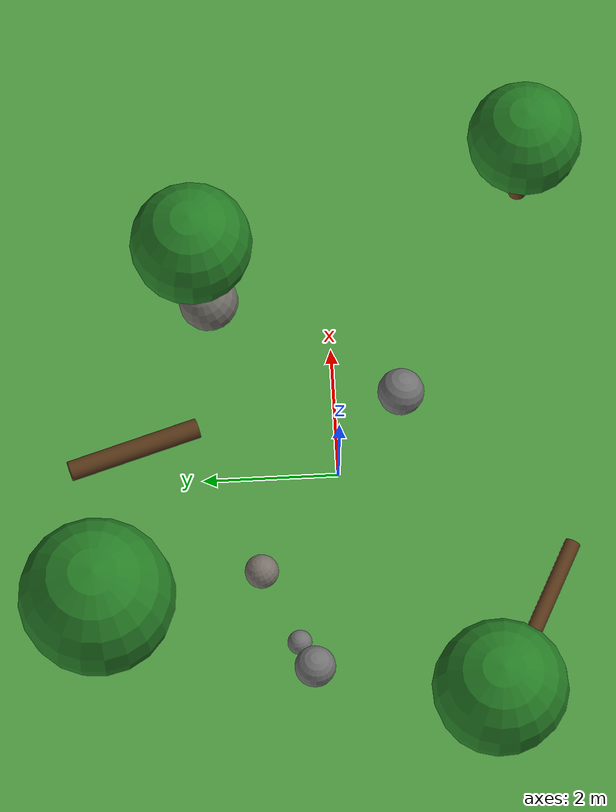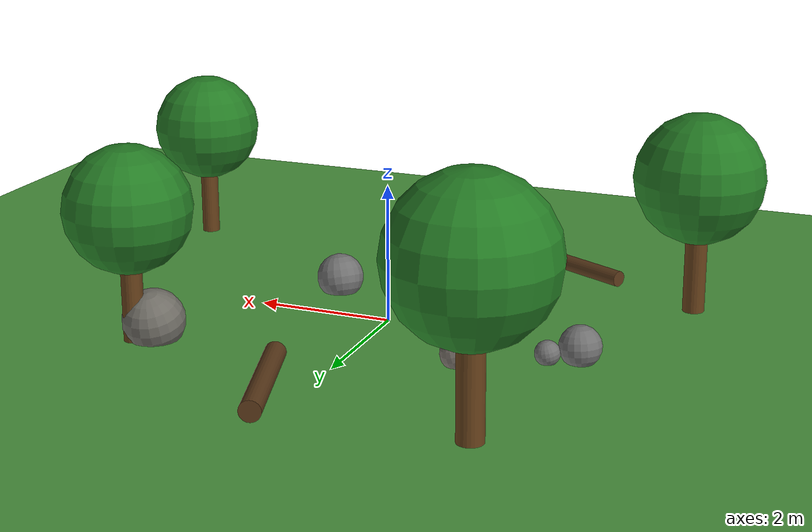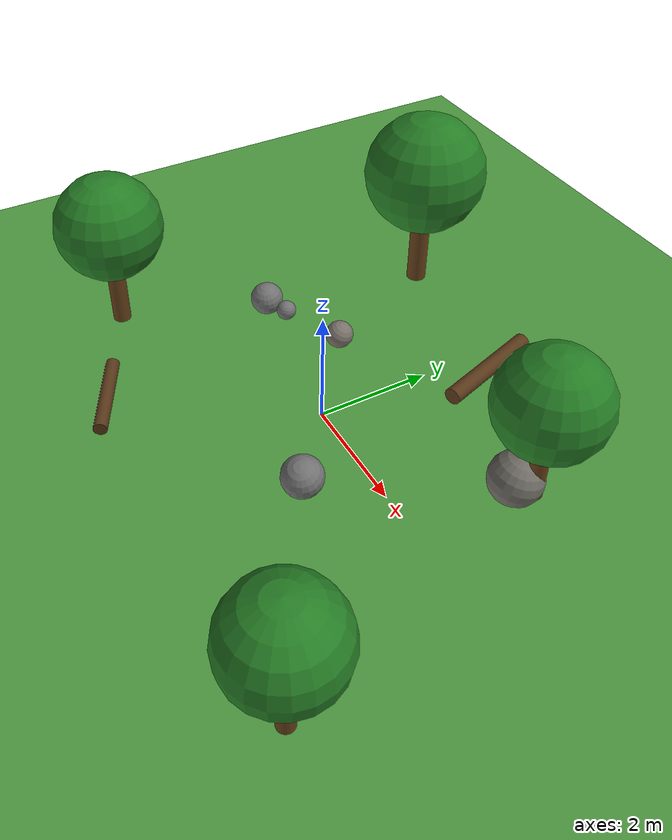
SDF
<?xml version="1.0" ?>
<sdf version="1.6">
  <world name="outdoor_field">
    <include><uri>model://sun</uri></include>

    <!-- Ground plane with a grass-like material instead of warehouse gray -->
    <model name="ground_plane">
      <static>true</static>
      <link name="link">
        <collision name="collision">
          <geometry><plane><normal>0 0 1</normal><size>100 100</size></plane></geometry>
          <surface>
            <friction><ode><mu>0.9</mu><mu2>0.9</mu2></ode></friction>
          </surface>
        </collision>
        <visual name="visual">
          <geometry><plane><normal>0 0 1</normal><size>100 100</size></plane></geometry>
          <material>
            <script>
              <uri>file://media/materials/scripts/gazebo.material</uri>
              <name>Gazebo/Grass</name>
            </script>
          </material>
        </visual>
      </link>
    </model>

    <physics type="ode">
      <max_step_size>0.001</max_step_size>
      <real_time_factor>1.0</real_time_factor>
      <real_time_update_rate>1000</real_time_update_rate>
    </physics>

    <!-- ===================== TREES ===================== -->
    <!-- Each tree = brown trunk (cylinder) + green foliage (sphere) in one static model -->

    <model name="tree_1">
      <static>true</static>
      <pose>3.0 2.0 0 0 0 0</pose>
      <link name="link">
        <collision name="trunk_collision">
          <pose>0 0 0.75 0 0 0</pose>
          <geometry><cylinder><radius>0.15</radius><length>1.5</length></cylinder></geometry>
        </collision>
        <visual name="trunk_visual">
          <pose>0 0 0.75 0 0 0</pose>
          <geometry><cylinder><radius>0.15</radius><length>1.5</length></cylinder></geometry>
          <material><ambient>0.35 0.2 0.1 1</ambient><diffuse>0.4 0.25 0.1 1</diffuse></material>
        </visual>
        <collision name="foliage_collision">
          <pose>0 0 1.9 0 0 0</pose>
          <geometry><sphere><radius>0.9</radius></sphere></geometry>
        </collision>
        <visual name="foliage_visual">
          <pose>0 0 1.9 0 0 0</pose>
          <geometry><sphere><radius>0.9</radius></sphere></geometry>
          <material><ambient>0.1 0.4 0.1 1</ambient><diffuse>0.15 0.5 0.15 1</diffuse></material>
        </visual>
      </link>
    </model>

    <model name="tree_2">
      <static>true</static>
      <pose>-2.5 3.5 0 0 0 0.4</pose>
      <link name="link">
        <collision name="trunk_collision">
          <pose>0 0 0.9 0 0 0</pose>
          <geometry><cylinder><radius>0.18</radius><length>1.8</length></cylinder></geometry>
        </collision>
        <visual name="trunk_visual">
          <pose>0 0 0.9 0 0 0</pose>
          <geometry><cylinder><radius>0.18</radius><length>1.8</length></cylinder></geometry>
          <material><ambient>0.35 0.2 0.1 1</ambient><diffuse>0.4 0.25 0.1 1</diffuse></material>
        </visual>
        <collision name="foliage_collision">
          <pose>0 0 2.3 0 0 0</pose>
          <geometry><sphere><radius>1.1</radius></sphere></geometry>
        </collision>
        <visual name="foliage_visual">
          <pose>0 0 2.3 0 0 0</pose>
          <geometry><sphere><radius>1.1</radius></sphere></geometry>
          <material><ambient>0.1 0.4 0.1 1</ambient><diffuse>0.15 0.5 0.15 1</diffuse></material>
        </visual>
      </link>
    </model>

    <model name="tree_3">
      <static>true</static>
      <pose>4.5 -3.0 0 0 0 1.2</pose>
      <link name="link">
        <collision name="trunk_collision">
          <pose>0 0 0.7 0 0 0</pose>
          <geometry><cylinder><radius>0.14</radius><length>1.4</length></cylinder></geometry>
        </collision>
        <visual name="trunk_visual">
          <pose>0 0 0.7 0 0 0</pose>
          <geometry><cylinder><radius>0.14</radius><length>1.4</length></cylinder></geometry>
          <material><ambient>0.35 0.2 0.1 1</ambient><diffuse>0.4 0.25 0.1 1</diffuse></material>
        </visual>
        <collision name="foliage_collision">
          <pose>0 0 1.8 0 0 0</pose>
          <geometry><sphere><radius>0.85</radius></sphere></geometry>
        </collision>
        <visual name="foliage_visual">
          <pose>0 0 1.8 0 0 0</pose>
          <geometry><sphere><radius>0.85</radius></sphere></geometry>
          <material><ambient>0.1 0.4 0.1 1</ambient><diffuse>0.15 0.5 0.15 1</diffuse></material>
        </visual>
      </link>
    </model>

    <model name="tree_4">
      <static>true</static>
      <pose>-4.0 -2.0 0 0 0 2.1</pose>
      <link name="link">
        <collision name="trunk_collision">
          <pose>0 0 0.8 0 0 0</pose>
          <geometry><cylinder><radius>0.16</radius><length>1.6</length></cylinder></geometry>
        </collision>
        <visual name="trunk_visual">
          <pose>0 0 0.8 0 0 0</pose>
          <geometry><cylinder><radius>0.16</radius><length>1.6</length></cylinder></geometry>
          <material><ambient>0.35 0.2 0.1 1</ambient><diffuse>0.4 0.25 0.1 1</diffuse></material>
        </visual>
        <collision name="foliage_collision">
          <pose>0 0 2.0 0 0 0</pose>
          <geometry><sphere><radius>0.95</radius></sphere></geometry>
        </collision>
        <visual name="foliage_visual">
          <pose>0 0 2.0 0 0 0</pose>
          <geometry><sphere><radius>0.95</radius></sphere></geometry>
          <material><ambient>0.1 0.4 0.1 1</ambient><diffuse>0.15 0.5 0.15 1</diffuse></material>
        </visual>
      </link>
    </model>

    <!-- ===================== ROCKS ===================== -->
    <!-- Flattened, irregularly-scaled spheres to read as boulders rather than perfect balls -->

    <model name="rock_1">
      <static>true</static>
      <pose>1.2 -1.0 0.2 0.3 0.1 0.5</pose>
      <link name="link">
        <collision name="collision">
          <geometry><sphere><radius>0.35</radius></sphere></geometry>
        </collision>
        <visual name="visual">
          <geometry><sphere><radius>0.35</radius></sphere></geometry>
          <material><ambient>0.4 0.4 0.4 1</ambient><diffuse>0.45 0.45 0.45 1</diffuse></material>
        </visual>
      </link>
    </model>

    <model name="rock_2">
      <static>true</static>
      <pose>-1.5 1.2 0.15 0.1 0.4 1.0</pose>
      <link name="link">
        <collision name="collision">
          <geometry><sphere><radius>0.25</radius></sphere></geometry>
        </collision>
        <visual name="visual">
          <geometry><sphere><radius>0.25</radius></sphere></geometry>
          <material><ambient>0.42 0.4 0.38 1</ambient><diffuse>0.48 0.45 0.42 1</diffuse></material>
        </visual>
      </link>
    </model>

    <model name="rock_3">
      <static>true</static>
      <pose>2.8 1.8 0.25 0.2 0.2 2.3</pose>
      <link name="link">
        <collision name="collision">
          <geometry><sphere><radius>0.45</radius></sphere></geometry>
        </collision>
        <visual name="visual">
          <geometry><sphere><radius>0.45</radius></sphere></geometry>
          <material><ambient>0.38 0.37 0.35 1</ambient><diffuse>0.44 0.43 0.4 1</diffuse></material>
        </visual>
      </link>
    </model>

    <model name="rock_cluster_1">
      <static>true</static>
      <pose>-3.0 0.5 0 0 0 0</pose>
      <link name="link">
        <collision name="rock_a_collision">
          <pose>0 0 0.2 0.1 0.1 0</pose>
          <geometry><sphere><radius>0.3</radius></sphere></geometry>
        </collision>
        <visual name="rock_a_visual">
          <pose>0 0 0.2 0.1 0.1 0</pose>
          <geometry><sphere><radius>0.3</radius></sphere></geometry>
          <material><ambient>0.4 0.4 0.4 1</ambient><diffuse>0.45 0.45 0.45 1</diffuse></material>
        </visual>
        <collision name="rock_b_collision">
          <pose>0.4 0.2 0.12 0 0.2 0.5</pose>
          <geometry><sphere><radius>0.18</radius></sphere></geometry>
        </collision>
        <visual name="rock_b_visual">
          <pose>0.4 0.2 0.12 0 0.2 0.5</pose>
          <geometry><sphere><radius>0.18</radius></sphere></geometry>
          <material><ambient>0.4 0.4 0.4 1</ambient><diffuse>0.45 0.45 0.45 1</diffuse></material>
        </visual>
      </link>
    </model>

    <!-- ===================== FALLEN LOGS ===================== -->
    <!-- Horizontal cylinders -- long, low obstacles the local costmap/inflation must handle differently than round rocks -->

    <model name="fallen_log_1">
      <static>true</static>
      <pose>0.5 3.0 0.15 1.5708 0 0.3</pose>
      <link name="link">
        <collision name="collision">
          <geometry><cylinder><radius>0.15</radius><length>2.0</length></cylinder></geometry>
        </collision>
        <visual name="visual">
          <geometry><cylinder><radius>0.15</radius><length>2.0</length></cylinder></geometry>
          <material><ambient>0.3 0.18 0.08 1</ambient><diffuse>0.35 0.22 0.1 1</diffuse></material>
        </visual>
      </link>
    </model>

    <model name="fallen_log_2">
      <static>true</static>
      <pose>-2.0 -3.0 0.12 1.5708 0 1.1</pose>
      <link name="link">
        <collision name="collision">
          <geometry><cylinder><radius>0.12</radius><length>1.6</length></cylinder></geometry>
        </collision>
        <visual name="visual">
          <geometry><cylinder><radius>0.12</radius><length>1.6</length></cylinder></geometry>
          <material><ambient>0.3 0.18 0.08 1</ambient><diffuse>0.35 0.22 0.1 1</diffuse></material>
        </visual>
      </link>
    </model>

  </world>
</sdf>
